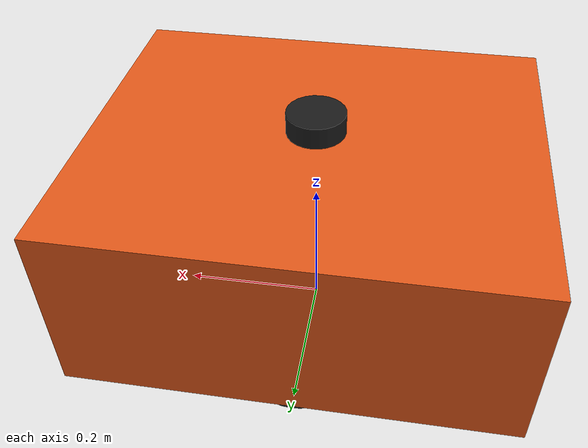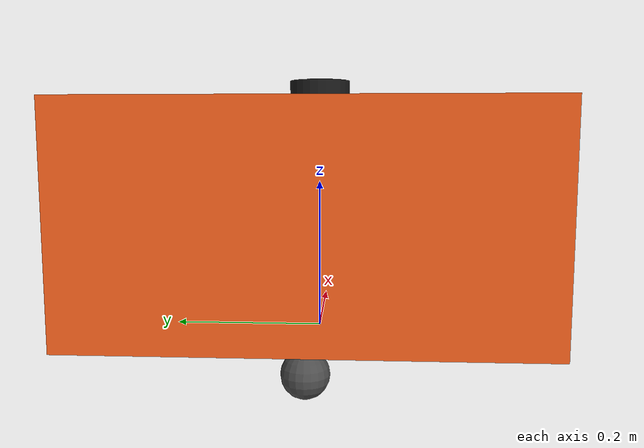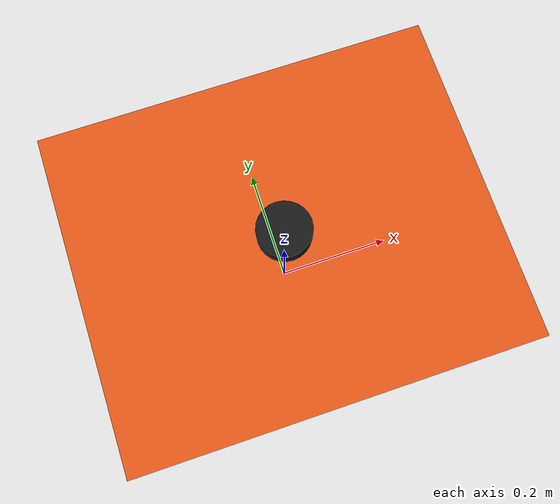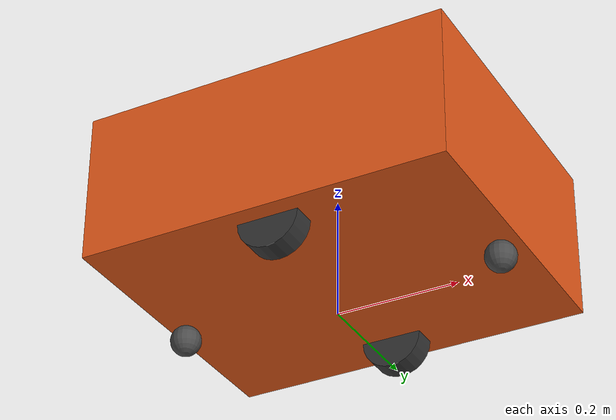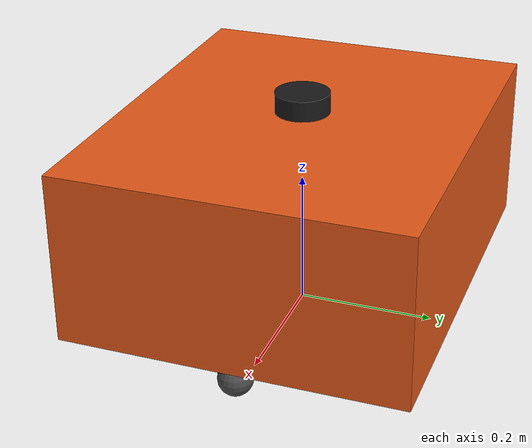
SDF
<?xml version="1.0" ?>
<sdf version="1.9">
  <model name="Zippy10">
    <self_collide>false</self_collide>

    <!-- ══ Chassis ══ -->
    <link name="chassis">
      <pose>0 0 0.175000 0 0 0</pose>
      <inertial>
        <mass>30.0</mass>
        <inertia>
          <ixx>0.781250</ixx><ixy>0</ixy><ixz>0</ixz>
          <iyy>1.056250</iyy><iyz>0</iyz>
          <izz>1.525000</izz>
        </inertia>
      </inertial>
      <visual name="chassis_visual">
        <geometry><box><size>0.6 0.5 0.25</size></box></geometry>
        <material>
          <ambient>0.9 0.35 0.1 1.0</ambient>
          <diffuse>0.9 0.35 0.1 1.0</diffuse>
        </material>
      </visual>
      <collision name="chassis_collision">
        <geometry><box><size>0.6 0.5 0.25</size></box></geometry>
      </collision>
    </link>

    <!-- ══ Left Wheel ══ -->
    <link name="left_wheel">
      <pose>0 0.200000 0.050000 1.5707963268 0 0</pose>
      <inertial>
        <mass>1.0</mass>
        <inertia>
          <ixx>0.000758</ixx><ixy>0</ixy><ixz>0</ixz>
          <iyy>0.000758</iyy><iyz>0</iyz>
          <izz>0.001250</izz>
        </inertia>
      </inertial>
      <visual name="left_wheel_visual">
        <geometry><cylinder><radius>0.05</radius><length>0.04</length></cylinder></geometry>
        <material><ambient>0.2 0.2 0.2 1.0</ambient><diffuse>0.2 0.2 0.2 1.0</diffuse></material>
      </visual>
      <collision name="left_wheel_collision">
        <geometry><cylinder><radius>0.05</radius><length>0.04</length></cylinder></geometry>
        <surface><friction><ode><mu>1.0</mu><mu2>1.0</mu2></ode></friction></surface>
      </collision>
    </link>
    <joint name="left_wheel_joint" type="revolute">
      <parent>chassis</parent><child>left_wheel</child>
      <axis><xyz>0 0 1</xyz><limit><lower>-1e16</lower><upper>1e16</upper></limit></axis>
    </joint>

    <!-- ══ Right Wheel ══ -->
    <link name="right_wheel">
      <pose>0 -0.200000 0.050000 1.5707963268 0 0</pose>
      <inertial>
        <mass>1.0</mass>
        <inertia>
          <ixx>0.000758</ixx><ixy>0</ixy><ixz>0</ixz>
          <iyy>0.000758</iyy><iyz>0</iyz>
          <izz>0.001250</izz>
        </inertia>
      </inertial>
      <visual name="right_wheel_visual">
        <geometry><cylinder><radius>0.05</radius><length>0.04</length></cylinder></geometry>
        <material><ambient>0.2 0.2 0.2 1.0</ambient><diffuse>0.2 0.2 0.2 1.0</diffuse></material>
      </visual>
      <collision name="right_wheel_collision">
        <geometry><cylinder><radius>0.05</radius><length>0.04</length></cylinder></geometry>
        <surface><friction><ode><mu>1.0</mu><mu2>1.0</mu2></ode></friction></surface>
      </collision>
    </link>
    <joint name="right_wheel_joint" type="revolute">
      <parent>chassis</parent><child>right_wheel</child>
      <axis><xyz>0 0 1</xyz><limit><lower>-1e16</lower><upper>1e16</upper></limit></axis>
    </joint>

    <!-- ══ Front Caster ══ -->
    <link name="front_caster">
      <pose>0.270000 0 0.025000 0 0 0</pose>
      <inertial>
        <mass>0.5</mass>
        <inertia><ixx>0.000281</ixx><ixy>0</ixy><ixz>0</ixz><iyy>0.000281</iyy><iyz>0</iyz><izz>0.000281</izz></inertia>
      </inertial>
      <visual name="front_caster_visual">
        <geometry><sphere><radius>0.025000</radius></sphere></geometry>
        <material><ambient>0.3 0.3 0.3 1.0</ambient><diffuse>0.3 0.3 0.3 1.0</diffuse></material>
      </visual>
      <collision name="front_caster_collision">
        <geometry><sphere><radius>0.025000</radius></sphere></geometry>
        <surface><friction><ode><mu>0.01</mu><mu2>0.01</mu2></ode></friction></surface>
      </collision>
    </link>
    <joint name="front_caster_joint" type="ball"><parent>chassis</parent><child>front_caster</child></joint>

    <!-- ══ Rear Caster ══ -->
    <link name="rear_caster">
      <pose>-0.270000 0 0.025000 0 0 0</pose>
      <inertial>
        <mass>0.5</mass>
        <inertia><ixx>0.000281</ixx><ixy>0</ixy><ixz>0</ixz><iyy>0.000281</iyy><iyz>0</iyz><izz>0.000281</izz></inertia>
      </inertial>
      <visual name="rear_caster_visual">
        <geometry><sphere><radius>0.025000</radius></sphere></geometry>
        <material><ambient>0.3 0.3 0.3 1.0</ambient><diffuse>0.3 0.3 0.3 1.0</diffuse></material>
      </visual>
      <collision name="rear_caster_collision">
        <geometry><sphere><radius>0.025000</radius></sphere></geometry>
        <surface><friction><ode><mu>0.01</mu><mu2>0.01</mu2></ode></friction></surface>
      </collision>
    </link>
    <joint name="rear_caster_joint" type="ball"><parent>chassis</parent><child>rear_caster</child></joint>

    <!-- ══ DiffDrive Plugin ══ -->
    <plugin filename="gz-sim-diff-drive-system" name="gz::sim::systems::DiffDrive">
      <left_joint>left_wheel_joint</left_joint>
      <right_joint>right_wheel_joint</right_joint>
      <wheel_separation>0.4</wheel_separation>
      <wheel_radius>0.05</wheel_radius>
      <max_linear_acceleration>0.8</max_linear_acceleration>
      <max_angular_velocity>1.57</max_angular_velocity>
      <topic>cmd_vel</topic>
      <odom_topic>odom</odom_topic>
      <tf_topic>tf</tf_topic>
      <frame_id>odom</frame_id>
      <child_frame_id>chassis</child_frame_id>
      <odom_publish_frequency>15</odom_publish_frequency>
    </plugin>

    <!-- ══ LiDAR ══ -->
    <link name="lidar_link">
      <pose>0 0 0.320000 0 0 0</pose>
      <inertial>
        <mass>0.1</mass>
        <inertia><ixx>0.000047</ixx><ixy>0</ixy><ixz>0</ixz><iyy>0.000047</iyy><iyz>0</iyz><izz>0.000080</izz></inertia>
      </inertial>
      <visual name="lidar_puck_visual">
        <geometry><cylinder><radius>0.04</radius><length>0.03</length></cylinder></geometry>
        <material><ambient>0.1 0.1 0.1 1.0</ambient><diffuse>0.1 0.1 0.1 1.0</diffuse></material>
      </visual>
      <sensor name="lidar_sensor" type="gpu_lidar">
        <always_on>true</always_on>
        <update_rate>10</update_rate>
        <visualize>true</visualize>
        <topic>lidar</topic>
        <ray>
          <scan>
            <horizontal>
              <samples>30</samples>
              <resolution>1</resolution>
              <min_angle>-0.261799</min_angle>
              <max_angle>0.261799</max_angle>
            </horizontal>
          </scan>
          <range>
            <min>0.08</min>
            <max>1.5</max>
            <resolution>0.01</resolution>
          </range>
          <noise><type>gaussian</type><mean>0.0</mean><stddev>0.03</stddev></noise>
        </ray>
      </sensor>
    </link>
    <joint name="lidar_joint" type="fixed"><parent>chassis</parent><child>lidar_link</child></joint>

    <plugin filename="gz-sim-joint-state-publisher-system" name="gz::sim::systems::JointStatePublisher"/>
  </model>
</sdf>
